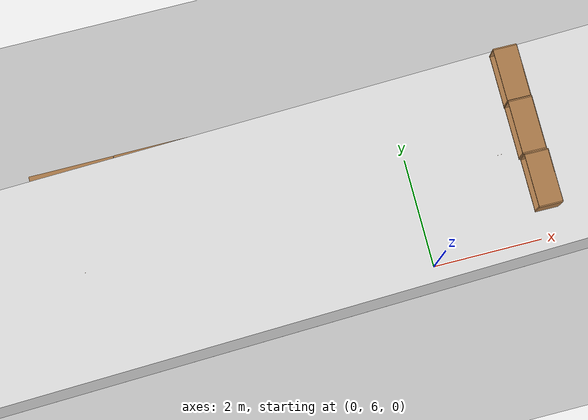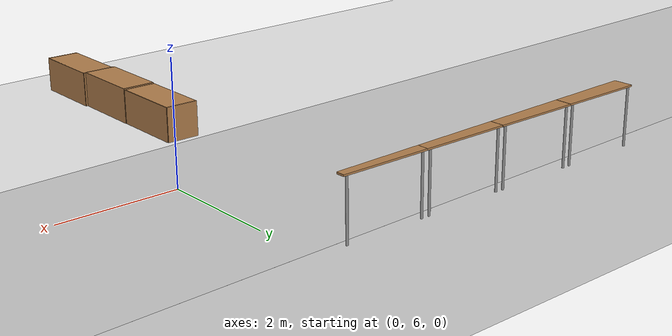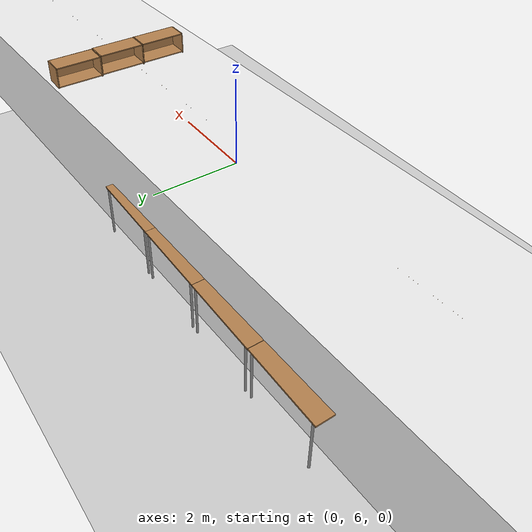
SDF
<sdf version="1.7">
 <world name="default">
  <model name="ground_plane">
   <static>1</static>
   <link name="link">
    <collision name="collision">
     <geometry><plane><normal>0 0 1</normal><size>100 100</size></plane></geometry>
     <surface><friction><ode><mu>100</mu><mu2>50</mu2></ode></friction></surface>
    </collision>
    <visual name="visual">
     <cast_shadows>0</cast_shadows>
     <geometry><plane><normal>0 0 1</normal><size>100 100</size></plane></geometry>
     <material>
      <script><uri>file://media/materials/scripts/gazebo.material</uri><name>Gazebo/Grey</name></script>
     </material>
    </visual>
   </link>
  </model>
  <model name="white_board">
   <link name="link">
    <inertial>
     <mass>1</mass>
     <inertia>
      <ixx>0.166667</ixx>
      <ixy>0</ixy>
      <ixz>0</ixz>
      <iyy>0.166667</iyy>
      <iyz>0</iyz>
      <izz>0.166667</izz>
     </inertia>
    </inertial>
    <visual name="visual">
     <geometry><box><size>3.46541 7029.7 1.9871</size></box></geometry>
     <material>
      <script><name>Gazebo/White</name><uri>file://media/materials/scripts/gazebo.material</uri></script>
      <shader type="pixel"><normal_map>__default__</normal_map></shader>
      <ambient>1 1 1 1</ambient>
      <diffuse>1 1 1 1</diffuse>
      <specular>0 0 0 1</specular>
      <emissive>0 0 0 1</emissive>
     </material>
    </visual>
    <collision name="collision">
     <geometry><box><size>3.46541 7029.7 1.9871</size></box></geometry>
     <surface>
      <friction>
       <ode><mu>1</mu><mu2>1</mu2><fdir1>0 0 0</fdir1><slip1>0</slip1><slip2>0</slip2></ode>
       <torsional>
        <coefficient>1</coefficient>
        <patch_radius>0</patch_radius>
        <surface_radius>0</surface_radius>
        <use_patch_radius>1</use_patch_radius>
        <ode><slip>0</slip></ode>
       </torsional>
      </friction>
      <bounce><restitution_coefficient>0</restitution_coefficient><threshold>1e+06</threshold></bounce>
      <contact>
       <collide_without_contact>0</collide_without_contact>
       <collide_without_contact_bitmask>1</collide_without_contact_bitmask>
       <collide_bitmask>1</collide_bitmask>
       <ode>
        <soft_cfm>0</soft_cfm>
        <soft_erp>0.2</soft_erp>
        <kp>1e+13</kp>
        <kd>1</kd>
        <max_vel>0.01</max_vel>
        <min_depth>0</min_depth>
       </ode>
       <bullet>
        <split_impulse>1</split_impulse>
        <split_impulse_penetration_threshold>-0.01</split_impulse_penetration_threshold>
        <soft_cfm>0</soft_cfm>
        <soft_erp>0.2</soft_erp>
        <kp>1e+13</kp>
        <kd>1</kd>
       </bullet>
      </contact>
     </surface>
    </collision>
   </link>
   <static>0</static>
   <pose>2.35353 7.36025 0.993605 7.2e-05 -2e-06 1.60156</pose>
  </model>
  <model name="bookshelf">
   <static>1</static>
   <link name="link">
    <inertial><mass>1</mass></inertial>
    <collision name="back">
     <pose>0 0.005 0.6 0 -0 0</pose>
     <geometry><box><size>0.9 0.01 1.2</size></box></geometry>
    </collision>
    <visual name="visual1">
     <pose>0 0.005 0.6 0 -0 0</pose>
     <geometry><box><size>0.9 0.01 1.2</size></box></geometry>
     <material>
      <script><uri>file://media/materials/scripts/gazebo.material</uri><name>Gazebo/Wood</name></script>
     </material>
    </visual>
    <collision name="left_side">
     <pose>0.45 -0.195 0.6 0 -0 0</pose>
     <geometry><box><size>0.02 0.4 1.2</size></box></geometry>
    </collision>
    <visual name="visual2">
     <pose>0.45 -0.195 0.6 0 -0 0</pose>
     <geometry><box><size>0.02 0.4 1.2</size></box></geometry>
     <material>
      <script><uri>file://media/materials/scripts/gazebo.material</uri><name>Gazebo/Wood</name></script>
     </material>
    </visual>
    <collision name="right_side">
     <pose>-0.45 -0.195 0.6 0 -0 0</pose>
     <geometry><box><size>0.02 0.4 1.2</size></box></geometry>
    </collision>
    <visual name="visual3">
     <pose>-0.45 -0.195 0.6 0 -0 0</pose>
     <geometry><box><size>0.02 0.4 1.2</size></box></geometry>
     <material>
      <script><uri>file://media/materials/scripts/gazebo.material</uri><name>Gazebo/Wood</name></script>
     </material>
    </visual>
    <collision name="bottom">
     <pose>0 -0.195 0.03 0 -0 0</pose>
     <geometry><box><size>0.88 0.4 0.06</size></box></geometry>
    </collision>
    <visual name="visual4">
     <pose>0 -0.195 0.03 0 -0 0</pose>
     <geometry><box><size>0.88 0.4 0.06</size></box></geometry>
     <material>
      <script><uri>file://media/materials/scripts/gazebo.material</uri><name>Gazebo/Wood</name></script>
     </material>
    </visual>
    <collision name="top">
     <pose>0 -0.195 1.19 0 -0 0</pose>
     <geometry><box><size>0.88 0.4 0.02</size></box></geometry>
    </collision>
    <visual name="visual5">
     <pose>0 -0.195 1.19 0 -0 0</pose>
     <geometry><box><size>0.88 0.4 0.02</size></box></geometry>
     <material>
      <script><uri>file://media/materials/scripts/gazebo.material</uri><name>Gazebo/Wood</name></script>
     </material>
    </visual>
    <collision name="low_shelf">
     <pose>0 -0.195 0.43 0 -0 0</pose>
     <geometry><box><size>0.88 0.4 0.02</size></box></geometry>
    </collision>
    <visual name="visual6">
     <pose>0 -0.195 0.43 0 -0 0</pose>
     <geometry><box><size>0.88 0.4 0.02</size></box></geometry>
     <material>
      <script><uri>file://media/materials/scripts/gazebo.material</uri><name>Gazebo/Wood</name></script>
     </material>
    </visual>
    <collision name="high_shelf">
     <pose>0 -0.195 0.8 0 -0 0</pose>
     <geometry><box><size>0.88 0.4 0.02</size></box></geometry>
    </collision>
    <visual name="visual7">
     <pose>0 -0.195 0.8 0 -0 0</pose>
     <geometry><box><size>0.88 0.4 0.02</size></box></geometry>
     <material>
      <script><uri>file://media/materials/scripts/gazebo.material</uri><name>Gazebo/Wood</name></script>
     </material>
    </visual>
   </link>
   <pose>2.02719 8.56875 0 0 0 -1.57846</pose>
  </model>
  <model name="bookshelf_clone">
   <static>1</static>
   <link name="link">
    <inertial><mass>1</mass></inertial>
    <collision name="back">
     <pose>0 0.005 0.6 0 -0 0</pose>
     <geometry><box><size>0.9 0.01 1.2</size></box></geometry>
    </collision>
    <visual name="visual1">
     <pose>0 0.005 0.6 0 -0 0</pose>
     <geometry><box><size>0.9 0.01 1.2</size></box></geometry>
     <material>
      <script><uri>file://media/materials/scripts/gazebo.material</uri><name>Gazebo/Wood</name></script>
     </material>
    </visual>
    <collision name="left_side">
     <pose>0.45 -0.195 0.6 0 -0 0</pose>
     <geometry><box><size>0.02 0.4 1.2</size></box></geometry>
    </collision>
    <visual name="visual2">
     <pose>0.45 -0.195 0.6 0 -0 0</pose>
     <geometry><box><size>0.02 0.4 1.2</size></box></geometry>
     <material>
      <script><uri>file://media/materials/scripts/gazebo.material</uri><name>Gazebo/Wood</name></script>
     </material>
    </visual>
    <collision name="right_side">
     <pose>-0.45 -0.195 0.6 0 -0 0</pose>
     <geometry><box><size>0.02 0.4 1.2</size></box></geometry>
    </collision>
    <visual name="visual3">
     <pose>-0.45 -0.195 0.6 0 -0 0</pose>
     <geometry><box><size>0.02 0.4 1.2</size></box></geometry>
     <material>
      <script><uri>file://media/materials/scripts/gazebo.material</uri><name>Gazebo/Wood</name></script>
     </material>
    </visual>
    <collision name="bottom">
     <pose>0 -0.195 0.03 0 -0 0</pose>
     <geometry><box><size>0.88 0.4 0.06</size></box></geometry>
    </collision>
    <visual name="visual4">
     <pose>0 -0.195 0.03 0 -0 0</pose>
     <geometry><box><size>0.88 0.4 0.06</size></box></geometry>
     <material>
      <script><uri>file://media/materials/scripts/gazebo.material</uri><name>Gazebo/Wood</name></script>
     </material>
    </visual>
    <collision name="top">
     <pose>0 -0.195 1.19 0 -0 0</pose>
     <geometry><box><size>0.88 0.4 0.02</size></box></geometry>
    </collision>
    <visual name="visual5">
     <pose>0 -0.195 1.19 0 -0 0</pose>
     <geometry><box><size>0.88 0.4 0.02</size></box></geometry>
     <material>
      <script><uri>file://media/materials/scripts/gazebo.material</uri><name>Gazebo/Wood</name></script>
     </material>
    </visual>
    <collision name="low_shelf">
     <pose>0 -0.195 0.43 0 -0 0</pose>
     <geometry><box><size>0.88 0.4 0.02</size></box></geometry>
    </collision>
    <visual name="visual6">
     <pose>0 -0.195 0.43 0 -0 0</pose>
     <geometry><box><size>0.88 0.4 0.02</size></box></geometry>
     <material>
      <script><uri>file://media/materials/scripts/gazebo.material</uri><name>Gazebo/Wood</name></script>
     </material>
    </visual>
    <collision name="high_shelf">
     <pose>0 -0.195 0.8 0 -0 0</pose>
     <geometry><box><size>0.88 0.4 0.02</size></box></geometry>
    </collision>
    <visual name="visual7">
     <pose>0 -0.195 0.8 0 -0 0</pose>
     <geometry><box><size>0.88 0.4 0.02</size></box></geometry>
     <material>
      <script><uri>file://media/materials/scripts/gazebo.material</uri><name>Gazebo/Wood</name></script>
     </material>
    </visual>
   </link>
   <pose>2.02018 7.63191 0 0 0 -1.57846</pose>
  </model>
  <model name="bookshelf_clone_0">
   <static>1</static>
   <link name="link">
    <inertial><mass>1</mass></inertial>
    <collision name="back">
     <pose>0 0.005 0.6 0 -0 0</pose>
     <geometry><box><size>0.9 0.01 1.2</size></box></geometry>
    </collision>
    <visual name="visual1">
     <pose>0 0.005 0.6 0 -0 0</pose>
     <geometry><box><size>0.9 0.01 1.2</size></box></geometry>
     <material>
      <script><uri>file://media/materials/scripts/gazebo.material</uri><name>Gazebo/Wood</name></script>
     </material>
    </visual>
    <collision name="left_side">
     <pose>0.45 -0.195 0.6 0 -0 0</pose>
     <geometry><box><size>0.02 0.4 1.2</size></box></geometry>
    </collision>
    <visual name="visual2">
     <pose>0.45 -0.195 0.6 0 -0 0</pose>
     <geometry><box><size>0.02 0.4 1.2</size></box></geometry>
     <material>
      <script><uri>file://media/materials/scripts/gazebo.material</uri><name>Gazebo/Wood</name></script>
     </material>
    </visual>
    <collision name="right_side">
     <pose>-0.45 -0.195 0.6 0 -0 0</pose>
     <geometry><box><size>0.02 0.4 1.2</size></box></geometry>
    </collision>
    <visual name="visual3">
     <pose>-0.45 -0.195 0.6 0 -0 0</pose>
     <geometry><box><size>0.02 0.4 1.2</size></box></geometry>
     <material>
      <script><uri>file://media/materials/scripts/gazebo.material</uri><name>Gazebo/Wood</name></script>
     </material>
    </visual>
    <collision name="bottom">
     <pose>0 -0.195 0.03 0 -0 0</pose>
     <geometry><box><size>0.88 0.4 0.06</size></box></geometry>
    </collision>
    <visual name="visual4">
     <pose>0 -0.195 0.03 0 -0 0</pose>
     <geometry><box><size>0.88 0.4 0.06</size></box></geometry>
     <material>
      <script><uri>file://media/materials/scripts/gazebo.material</uri><name>Gazebo/Wood</name></script>
     </material>
    </visual>
    <collision name="top">
     <pose>0 -0.195 1.19 0 -0 0</pose>
     <geometry><box><size>0.88 0.4 0.02</size></box></geometry>
    </collision>
    <visual name="visual5">
     <pose>0 -0.195 1.19 0 -0 0</pose>
     <geometry><box><size>0.88 0.4 0.02</size></box></geometry>
     <material>
      <script><uri>file://media/materials/scripts/gazebo.material</uri><name>Gazebo/Wood</name></script>
     </material>
    </visual>
    <collision name="low_shelf">
     <pose>0 -0.195 0.43 0 -0 0</pose>
     <geometry><box><size>0.88 0.4 0.02</size></box></geometry>
    </collision>
    <visual name="visual6">
     <pose>0 -0.195 0.43 0 -0 0</pose>
     <geometry><box><size>0.88 0.4 0.02</size></box></geometry>
     <material>
      <script><uri>file://media/materials/scripts/gazebo.material</uri><name>Gazebo/Wood</name></script>
     </material>
    </visual>
    <collision name="high_shelf">
     <pose>0 -0.195 0.8 0 -0 0</pose>
     <geometry><box><size>0.88 0.4 0.02</size></box></geometry>
    </collision>
    <visual name="visual7">
     <pose>0 -0.195 0.8 0 -0 0</pose>
     <geometry><box><size>0.88 0.4 0.02</size></box></geometry>
     <material>
      <script><uri>file://media/materials/scripts/gazebo.material</uri><name>Gazebo/Wood</name></script>
     </material>
    </visual>
   </link>
   <pose>2.01813 6.70689 0 0 0 -1.57846</pose>
  </model>
  <model name="bookshelf_clone_1">
   <static>1</static>
   <link name="link">
    <inertial><mass>1</mass></inertial>
    <collision name="back">
     <pose>0 0.005 0.6 0 -0 0</pose>
     <geometry><box><size>0.9 0.01 1.2</size></box></geometry>
    </collision>
    <visual name="visual1">
     <pose>0 0.005 0.6 0 -0 0</pose>
     <geometry><box><size>0.9 0.01 1.2</size></box></geometry>
     <material>
      <script><uri>file://media/materials/scripts/gazebo.material</uri><name>Gazebo/Wood</name></script>
     </material>
    </visual>
    <collision name="left_side">
     <pose>0.45 -0.195 0.6 0 -0 0</pose>
     <geometry><box><size>0.02 0.4 1.2</size></box></geometry>
    </collision>
    <visual name="visual2">
     <pose>0.45 -0.195 0.6 0 -0 0</pose>
     <geometry><box><size>0.02 0.4 1.2</size></box></geometry>
     <material>
      <script><uri>file://media/materials/scripts/gazebo.material</uri><name>Gazebo/Wood</name></script>
     </material>
    </visual>
    <collision name="right_side">
     <pose>-0.45 -0.195 0.6 0 -0 0</pose>
     <geometry><box><size>0.02 0.4 1.2</size></box></geometry>
    </collision>
    <visual name="visual3">
     <pose>-0.45 -0.195 0.6 0 -0 0</pose>
     <geometry><box><size>0.02 0.4 1.2</size></box></geometry>
     <material>
      <script><uri>file://media/materials/scripts/gazebo.material</uri><name>Gazebo/Wood</name></script>
     </material>
    </visual>
    <collision name="bottom">
     <pose>0 -0.195 0.03 0 -0 0</pose>
     <geometry><box><size>0.88 0.4 0.06</size></box></geometry>
    </collision>
    <visual name="visual4">
     <pose>0 -0.195 0.03 0 -0 0</pose>
     <geometry><box><size>0.88 0.4 0.06</size></box></geometry>
     <material>
      <script><uri>file://media/materials/scripts/gazebo.material</uri><name>Gazebo/Wood</name></script>
     </material>
    </visual>
    <collision name="top">
     <pose>0 -0.195 1.19 0 -0 0</pose>
     <geometry><box><size>0.88 0.4 0.02</size></box></geometry>
    </collision>
    <visual name="visual5">
     <pose>0 -0.195 1.19 0 -0 0</pose>
     <geometry><box><size>0.88 0.4 0.02</size></box></geometry>
     <material>
      <script><uri>file://media/materials/scripts/gazebo.material</uri><name>Gazebo/Wood</name></script>
     </material>
    </visual>
    <collision name="low_shelf">
     <pose>0 -0.195 0.43 0 -0 0</pose>
     <geometry><box><size>0.88 0.4 0.02</size></box></geometry>
    </collision>
    <visual name="visual6">
     <pose>0 -0.195 0.43 0 -0 0</pose>
     <geometry><box><size>0.88 0.4 0.02</size></box></geometry>
     <material>
      <script><uri>file://media/materials/scripts/gazebo.material</uri><name>Gazebo/Wood</name></script>
     </material>
    </visual>
    <collision name="high_shelf">
     <pose>0 -0.195 0.8 0 -0 0</pose>
     <geometry><box><size>0.88 0.4 0.02</size></box></geometry>
    </collision>
    <visual name="visual7">
     <pose>0 -0.195 0.8 0 -0 0</pose>
     <geometry><box><size>0.88 0.4 0.02</size></box></geometry>
     <material>
      <script><uri>file://media/materials/scripts/gazebo.material</uri><name>Gazebo/Wood</name></script>
     </material>
    </visual>
   </link>
   <pose>1.98401 8.53938 1.20832 0 0 -1.57846</pose>
  </model>
  <model name="bookshelf_clone_1_clone">
   <static>1</static>
   <link name="link">
    <inertial><mass>1</mass></inertial>
    <collision name="back">
     <pose>0 0.005 0.6 0 -0 0</pose>
     <geometry><box><size>0.9 0.01 1.2</size></box></geometry>
    </collision>
    <visual name="visual1">
     <pose>0 0.005 0.6 0 -0 0</pose>
     <geometry><box><size>0.9 0.01 1.2</size></box></geometry>
     <material>
      <script><uri>file://media/materials/scripts/gazebo.material</uri><name>Gazebo/Wood</name></script>
     </material>
    </visual>
    <collision name="left_side">
     <pose>0.45 -0.195 0.6 0 -0 0</pose>
     <geometry><box><size>0.02 0.4 1.2</size></box></geometry>
    </collision>
    <visual name="visual2">
     <pose>0.45 -0.195 0.6 0 -0 0</pose>
     <geometry><box><size>0.02 0.4 1.2</size></box></geometry>
     <material>
      <script><uri>file://media/materials/scripts/gazebo.material</uri><name>Gazebo/Wood</name></script>
     </material>
    </visual>
    <collision name="right_side">
     <pose>-0.45 -0.195 0.6 0 -0 0</pose>
     <geometry><box><size>0.02 0.4 1.2</size></box></geometry>
    </collision>
    <visual name="visual3">
     <pose>-0.45 -0.195 0.6 0 -0 0</pose>
     <geometry><box><size>0.02 0.4 1.2</size></box></geometry>
     <material>
      <script><uri>file://media/materials/scripts/gazebo.material</uri><name>Gazebo/Wood</name></script>
     </material>
    </visual>
    <collision name="bottom">
     <pose>0 -0.195 0.03 0 -0 0</pose>
     <geometry><box><size>0.88 0.4 0.06</size></box></geometry>
    </collision>
    <visual name="visual4">
     <pose>0 -0.195 0.03 0 -0 0</pose>
     <geometry><box><size>0.88 0.4 0.06</size></box></geometry>
     <material>
      <script><uri>file://media/materials/scripts/gazebo.material</uri><name>Gazebo/Wood</name></script>
     </material>
    </visual>
    <collision name="top">
     <pose>0 -0.195 1.19 0 -0 0</pose>
     <geometry><box><size>0.88 0.4 0.02</size></box></geometry>
    </collision>
    <visual name="visual5">
     <pose>0 -0.195 1.19 0 -0 0</pose>
     <geometry><box><size>0.88 0.4 0.02</size></box></geometry>
     <material>
      <script><uri>file://media/materials/scripts/gazebo.material</uri><name>Gazebo/Wood</name></script>
     </material>
    </visual>
    <collision name="low_shelf">
     <pose>0 -0.195 0.43 0 -0 0</pose>
     <geometry><box><size>0.88 0.4 0.02</size></box></geometry>
    </collision>
    <visual name="visual6">
     <pose>0 -0.195 0.43 0 -0 0</pose>
     <geometry><box><size>0.88 0.4 0.02</size></box></geometry>
     <material>
      <script><uri>file://media/materials/scripts/gazebo.material</uri><name>Gazebo/Wood</name></script>
     </material>
    </visual>
    <collision name="high_shelf">
     <pose>0 -0.195 0.8 0 -0 0</pose>
     <geometry><box><size>0.88 0.4 0.02</size></box></geometry>
    </collision>
    <visual name="visual7">
     <pose>0 -0.195 0.8 0 -0 0</pose>
     <geometry><box><size>0.88 0.4 0.02</size></box></geometry>
     <material>
      <script><uri>file://media/materials/scripts/gazebo.material</uri><name>Gazebo/Wood</name></script>
     </material>
    </visual>
   </link>
   <pose>1.98187 7.6289 1.2192 0 0 -1.57846</pose>
  </model>
  <model name="bookshelf_clone_1_clone_clone">
   <static>1</static>
   <link name="link">
    <inertial><mass>1</mass></inertial>
    <collision name="back">
     <pose>0 0.005 0.6 0 -0 0</pose>
     <geometry><box><size>0.9 0.01 1.2</size></box></geometry>
    </collision>
    <visual name="visual1">
     <pose>0 0.005 0.6 0 -0 0</pose>
     <geometry><box><size>0.9 0.01 1.2</size></box></geometry>
     <material>
      <script><uri>file://media/materials/scripts/gazebo.material</uri><name>Gazebo/Wood</name></script>
     </material>
    </visual>
    <collision name="left_side">
     <pose>0.45 -0.195 0.6 0 -0 0</pose>
     <geometry><box><size>0.02 0.4 1.2</size></box></geometry>
    </collision>
    <visual name="visual2">
     <pose>0.45 -0.195 0.6 0 -0 0</pose>
     <geometry><box><size>0.02 0.4 1.2</size></box></geometry>
     <material>
      <script><uri>file://media/materials/scripts/gazebo.material</uri><name>Gazebo/Wood</name></script>
     </material>
    </visual>
    <collision name="right_side">
     <pose>-0.45 -0.195 0.6 0 -0 0</pose>
     <geometry><box><size>0.02 0.4 1.2</size></box></geometry>
    </collision>
    <visual name="visual3">
     <pose>-0.45 -0.195 0.6 0 -0 0</pose>
     <geometry><box><size>0.02 0.4 1.2</size></box></geometry>
     <material>
      <script><uri>file://media/materials/scripts/gazebo.material</uri><name>Gazebo/Wood</name></script>
     </material>
    </visual>
    <collision name="bottom">
     <pose>0 -0.195 0.03 0 -0 0</pose>
     <geometry><box><size>0.88 0.4 0.06</size></box></geometry>
    </collision>
    <visual name="visual4">
     <pose>0 -0.195 0.03 0 -0 0</pose>
     <geometry><box><size>0.88 0.4 0.06</size></box></geometry>
     <material>
      <script><uri>file://media/materials/scripts/gazebo.material</uri><name>Gazebo/Wood</name></script>
     </material>
    </visual>
    <collision name="top">
     <pose>0 -0.195 1.19 0 -0 0</pose>
     <geometry><box><size>0.88 0.4 0.02</size></box></geometry>
    </collision>
    <visual name="visual5">
     <pose>0 -0.195 1.19 0 -0 0</pose>
     <geometry><box><size>0.88 0.4 0.02</size></box></geometry>
     <material>
      <script><uri>file://media/materials/scripts/gazebo.material</uri><name>Gazebo/Wood</name></script>
     </material>
    </visual>
    <collision name="low_shelf">
     <pose>0 -0.195 0.43 0 -0 0</pose>
     <geometry><box><size>0.88 0.4 0.02</size></box></geometry>
    </collision>
    <visual name="visual6">
     <pose>0 -0.195 0.43 0 -0 0</pose>
     <geometry><box><size>0.88 0.4 0.02</size></box></geometry>
     <material>
      <script><uri>file://media/materials/scripts/gazebo.material</uri><name>Gazebo/Wood</name></script>
     </material>
    </visual>
    <collision name="high_shelf">
     <pose>0 -0.195 0.8 0 -0 0</pose>
     <geometry><box><size>0.88 0.4 0.02</size></box></geometry>
    </collision>
    <visual name="visual7">
     <pose>0 -0.195 0.8 0 -0 0</pose>
     <geometry><box><size>0.88 0.4 0.02</size></box></geometry>
     <material>
      <script><uri>file://media/materials/scripts/gazebo.material</uri><name>Gazebo/Wood</name></script>
     </material>
    </visual>
   </link>
   <pose>1.99749 6.71175 1.21121 0 0 -1.57846</pose>
  </model>
  <model name="table">
   <static>1</static>
   <link name="link">
    <collision name="surface">
     <pose>0 0 1 0 -0 0</pose>
     <geometry><box><size>1.5 0.8 0.03</size></box></geometry>
     <surface><friction><ode><mu>0.6</mu><mu2>0.6</mu2></ode></friction></surface>
    </collision>
    <visual name="visual1">
     <pose>0 0 1 0 -0 0</pose>
     <geometry><box><size>1.5 0.8 0.03</size></box></geometry>
     <material>
      <script><uri>file://media/materials/scripts/gazebo.material</uri><name>Gazebo/Wood</name></script>
     </material>
    </visual>
    <collision name="front_left_leg">
     <pose>0.68 0.38 0.5 0 -0 0</pose>
     <geometry><cylinder><radius>0.02</radius><length>1</length></cylinder></geometry>
    </collision>
    <visual name="front_left_leg">
     <pose>0.68 0.38 0.5 0 -0 0</pose>
     <geometry><cylinder><radius>0.02</radius><length>1</length></cylinder></geometry>
     <material>
      <script><uri>file://media/materials/scripts/gazebo.material</uri><name>Gazebo/Grey</name></script>
     </material>
    </visual>
    <collision name="front_right_leg">
     <pose>0.68 -0.38 0.5 0 -0 0</pose>
     <geometry><cylinder><radius>0.02</radius><length>1</length></cylinder></geometry>
    </collision>
    <visual name="front_right_leg">
     <pose>0.68 -0.38 0.5 0 -0 0</pose>
     <geometry><cylinder><radius>0.02</radius><length>1</length></cylinder></geometry>
     <material>
      <script><uri>file://media/materials/scripts/gazebo.material</uri><name>Gazebo/Grey</name></script>
     </material>
    </visual>
    <collision name="back_right_leg">
     <pose>-0.68 -0.38 0.5 0 -0 0</pose>
     <geometry><cylinder><radius>0.02</radius><length>1</length></cylinder></geometry>
    </collision>
    <visual name="back_right_leg">
     <pose>-0.68 -0.38 0.5 0 -0 0</pose>
     <geometry><cylinder><radius>0.02</radius><length>1</length></cylinder></geometry>
     <material>
      <script><uri>file://media/materials/scripts/gazebo.material</uri><name>Gazebo/Grey</name></script>
     </material>
    </visual>
    <collision name="back_left_leg">
     <pose>-0.68 0.38 0.5 0 -0 0</pose>
     <geometry><cylinder><radius>0.02</radius><length>1</length></cylinder></geometry>
    </collision>
    <visual name="back_left_leg">
     <pose>-0.68 0.38 0.5 0 -0 0</pose>
     <geometry><cylinder><radius>0.02</radius><length>1</length></cylinder></geometry>
     <material>
      <script><uri>file://media/materials/scripts/gazebo.material</uri><name>Gazebo/Grey</name></script>
     </material>
    </visual>
   </link>
   <pose>-5.75923 8.74639 0 0 -0 0</pose>
  </model>
  <model name="table_clone">
   <static>1</static>
   <link name="link">
    <collision name="surface">
     <pose>0 0 1 0 -0 0</pose>
     <geometry><box><size>1.5 0.8 0.03</size></box></geometry>
     <surface><friction><ode><mu>0.6</mu><mu2>0.6</mu2></ode></friction></surface>
    </collision>
    <visual name="visual1">
     <pose>0 0 1 0 -0 0</pose>
     <geometry><box><size>1.5 0.8 0.03</size></box></geometry>
     <material>
      <script><uri>file://media/materials/scripts/gazebo.material</uri><name>Gazebo/Wood</name></script>
     </material>
    </visual>
    <collision name="front_left_leg">
     <pose>0.68 0.38 0.5 0 -0 0</pose>
     <geometry><cylinder><radius>0.02</radius><length>1</length></cylinder></geometry>
    </collision>
    <visual name="front_left_leg">
     <pose>0.68 0.38 0.5 0 -0 0</pose>
     <geometry><cylinder><radius>0.02</radius><length>1</length></cylinder></geometry>
     <material>
      <script><uri>file://media/materials/scripts/gazebo.material</uri><name>Gazebo/Grey</name></script>
     </material>
    </visual>
    <collision name="front_right_leg">
     <pose>0.68 -0.38 0.5 0 -0 0</pose>
     <geometry><cylinder><radius>0.02</radius><length>1</length></cylinder></geometry>
    </collision>
    <visual name="front_right_leg">
     <pose>0.68 -0.38 0.5 0 -0 0</pose>
     <geometry><cylinder><radius>0.02</radius><length>1</length></cylinder></geometry>
     <material>
      <script><uri>file://media/materials/scripts/gazebo.material</uri><name>Gazebo/Grey</name></script>
     </material>
    </visual>
    <collision name="back_right_leg">
     <pose>-0.68 -0.38 0.5 0 -0 0</pose>
     <geometry><cylinder><radius>0.02</radius><length>1</length></cylinder></geometry>
    </collision>
    <visual name="back_right_leg">
     <pose>-0.68 -0.38 0.5 0 -0 0</pose>
     <geometry><cylinder><radius>0.02</radius><length>1</length></cylinder></geometry>
     <material>
      <script><uri>file://media/materials/scripts/gazebo.material</uri><name>Gazebo/Grey</name></script>
     </material>
    </visual>
    <collision name="back_left_leg">
     <pose>-0.68 0.38 0.5 0 -0 0</pose>
     <geometry><cylinder><radius>0.02</radius><length>1</length></cylinder></geometry>
    </collision>
    <visual name="back_left_leg">
     <pose>-0.68 0.38 0.5 0 -0 0</pose>
     <geometry><cylinder><radius>0.02</radius><length>1</length></cylinder></geometry>
     <material>
      <script><uri>file://media/materials/scripts/gazebo.material</uri><name>Gazebo/Grey</name></script>
     </material>
    </visual>
   </link>
   <pose>-4.25099 8.75028 0 0 -0 0</pose>
  </model>
  <model name="table_clone_0">
   <static>1</static>
   <link name="link">
    <collision name="surface">
     <pose>0 0 1 0 -0 0</pose>
     <geometry><box><size>1.5 0.8 0.03</size></box></geometry>
     <surface><friction><ode><mu>0.6</mu><mu2>0.6</mu2></ode></friction></surface>
    </collision>
    <visual name="visual1">
     <pose>0 0 1 0 -0 0</pose>
     <geometry><box><size>1.5 0.8 0.03</size></box></geometry>
     <material>
      <script><uri>file://media/materials/scripts/gazebo.material</uri><name>Gazebo/Wood</name></script>
     </material>
    </visual>
    <collision name="front_left_leg">
     <pose>0.68 0.38 0.5 0 -0 0</pose>
     <geometry><cylinder><radius>0.02</radius><length>1</length></cylinder></geometry>
    </collision>
    <visual name="front_left_leg">
     <pose>0.68 0.38 0.5 0 -0 0</pose>
     <geometry><cylinder><radius>0.02</radius><length>1</length></cylinder></geometry>
     <material>
      <script><uri>file://media/materials/scripts/gazebo.material</uri><name>Gazebo/Grey</name></script>
     </material>
    </visual>
    <collision name="front_right_leg">
     <pose>0.68 -0.38 0.5 0 -0 0</pose>
     <geometry><cylinder><radius>0.02</radius><length>1</length></cylinder></geometry>
    </collision>
    <visual name="front_right_leg">
     <pose>0.68 -0.38 0.5 0 -0 0</pose>
     <geometry><cylinder><radius>0.02</radius><length>1</length></cylinder></geometry>
     <material>
      <script><uri>file://media/materials/scripts/gazebo.material</uri><name>Gazebo/Grey</name></script>
     </material>
    </visual>
    <collision name="back_right_leg">
     <pose>-0.68 -0.38 0.5 0 -0 0</pose>
     <geometry><cylinder><radius>0.02</radius><length>1</length></cylinder></geometry>
    </collision>
    <visual name="back_right_leg">
     <pose>-0.68 -0.38 0.5 0 -0 0</pose>
     <geometry><cylinder><radius>0.02</radius><length>1</length></cylinder></geometry>
     <material>
      <script><uri>file://media/materials/scripts/gazebo.material</uri><name>Gazebo/Grey</name></script>
     </material>
    </visual>
    <collision name="back_left_leg">
     <pose>-0.68 0.38 0.5 0 -0 0</pose>
     <geometry><cylinder><radius>0.02</radius><length>1</length></cylinder></geometry>
    </collision>
    <visual name="back_left_leg">
     <pose>-0.68 0.38 0.5 0 -0 0</pose>
     <geometry><cylinder><radius>0.02</radius><length>1</length></cylinder></geometry>
     <material>
      <script><uri>file://media/materials/scripts/gazebo.material</uri><name>Gazebo/Grey</name></script>
     </material>
    </visual>
   </link>
   <pose>-2.74643 8.74798 0 0 -0 0</pose>
  </model>
  <model name="table_clone_1">
   <static>1</static>
   <link name="link">
    <collision name="surface">
     <pose>0 0 1 0 -0 0</pose>
     <geometry><box><size>1.5 0.8 0.03</size></box></geometry>
     <surface><friction><ode><mu>0.6</mu><mu2>0.6</mu2></ode></friction></surface>
    </collision>
    <visual name="visual1">
     <pose>0 0 1 0 -0 0</pose>
     <geometry><box><size>1.5 0.8 0.03</size></box></geometry>
     <material>
      <script><uri>file://media/materials/scripts/gazebo.material</uri><name>Gazebo/Wood</name></script>
     </material>
    </visual>
    <collision name="front_left_leg">
     <pose>0.68 0.38 0.5 0 -0 0</pose>
     <geometry><cylinder><radius>0.02</radius><length>1</length></cylinder></geometry>
    </collision>
    <visual name="front_left_leg">
     <pose>0.68 0.38 0.5 0 -0 0</pose>
     <geometry><cylinder><radius>0.02</radius><length>1</length></cylinder></geometry>
     <material>
      <script><uri>file://media/materials/scripts/gazebo.material</uri><name>Gazebo/Grey</name></script>
     </material>
    </visual>
    <collision name="front_right_leg">
     <pose>0.68 -0.38 0.5 0 -0 0</pose>
     <geometry><cylinder><radius>0.02</radius><length>1</length></cylinder></geometry>
    </collision>
    <visual name="front_right_leg">
     <pose>0.68 -0.38 0.5 0 -0 0</pose>
     <geometry><cylinder><radius>0.02</radius><length>1</length></cylinder></geometry>
     <material>
      <script><uri>file://media/materials/scripts/gazebo.material</uri><name>Gazebo/Grey</name></script>
     </material>
    </visual>
    <collision name="back_right_leg">
     <pose>-0.68 -0.38 0.5 0 -0 0</pose>
     <geometry><cylinder><radius>0.02</radius><length>1</length></cylinder></geometry>
    </collision>
    <visual name="back_right_leg">
     <pose>-0.68 -0.38 0.5 0 -0 0</pose>
     <geometry><cylinder><radius>0.02</radius><length>1</length></cylinder></geometry>
     <material>
      <script><uri>file://media/materials/scripts/gazebo.material</uri><name>Gazebo/Grey</name></script>
     </material>
    </visual>
    <collision name="back_left_leg">
     <pose>-0.68 0.38 0.5 0 -0 0</pose>
     <geometry><cylinder><radius>0.02</radius><length>1</length></cylinder></geometry>
    </collision>
    <visual name="back_left_leg">
     <pose>-0.68 0.38 0.5 0 -0 0</pose>
     <geometry><cylinder><radius>0.02</radius><length>1</length></cylinder></geometry>
     <material>
      <script><uri>file://media/materials/scripts/gazebo.material</uri><name>Gazebo/Grey</name></script>
     </material>
    </visual>
   </link>
   <pose>-1.24535 8.7473 0 0 -0 0</pose>
  </model>
  <model name="table_clone_2">
   <static>1</static>
   <link name="link">
    <collision name="surface">
     <pose>0 0 1 0 -0 0</pose>
     <geometry><box><size>1.5 0.8 0.03</size></box></geometry>
     <surface><friction><ode><mu>0.6</mu><mu2>0.6</mu2></ode></friction></surface>
    </collision>
    <visual name="visual1">
     <pose>0 0 1 0 -0 0</pose>
     <geometry><box><size>1.5 0.8 0.03</size></box></geometry>
     <material>
      <script><uri>file://media/materials/scripts/gazebo.material</uri><name>Gazebo/Wood</name></script>
     </material>
    </visual>
    <collision name="front_left_leg">
     <pose>0.68 0.38 0.5 0 -0 0</pose>
     <geometry><cylinder><radius>0.02</radius><length>1</length></cylinder></geometry>
    </collision>
    <visual name="front_left_leg">
     <pose>0.68 0.38 0.5 0 -0 0</pose>
     <geometry><cylinder><radius>0.02</radius><length>1</length></cylinder></geometry>
     <material>
      <script><uri>file://media/materials/scripts/gazebo.material</uri><name>Gazebo/Grey</name></script>
     </material>
    </visual>
    <collision name="front_right_leg">
     <pose>0.68 -0.38 0.5 0 -0 0</pose>
     <geometry><cylinder><radius>0.02</radius><length>1</length></cylinder></geometry>
    </collision>
    <visual name="front_right_leg">
     <pose>0.68 -0.38 0.5 0 -0 0</pose>
     <geometry><cylinder><radius>0.02</radius><length>1</length></cylinder></geometry>
     <material>
      <script><uri>file://media/materials/scripts/gazebo.material</uri><name>Gazebo/Grey</name></script>
     </material>
    </visual>
    <collision name="back_right_leg">
     <pose>-0.68 -0.38 0.5 0 -0 0</pose>
     <geometry><cylinder><radius>0.02</radius><length>1</length></cylinder></geometry>
    </collision>
    <visual name="back_right_leg">
     <pose>-0.68 -0.38 0.5 0 -0 0</pose>
     <geometry><cylinder><radius>0.02</radius><length>1</length></cylinder></geometry>
     <material>
      <script><uri>file://media/materials/scripts/gazebo.material</uri><name>Gazebo/Grey</name></script>
     </material>
    </visual>
    <collision name="back_left_leg">
     <pose>-0.68 0.38 0.5 0 -0 0</pose>
     <geometry><cylinder><radius>0.02</radius><length>1</length></cylinder></geometry>
    </collision>
    <visual name="back_left_leg">
     <pose>-0.68 0.38 0.5 0 -0 0</pose>
     <geometry><cylinder><radius>0.02</radius><length>1</length></cylinder></geometry>
     <material>
      <script><uri>file://media/materials/scripts/gazebo.material</uri><name>Gazebo/Grey</name></script>
     </material>
    </visual>
   </link>
   <pose>-5.73044 6.10983 0 0 -0 0</pose>
  </model>
  <model name="table_clone_3">
   <static>1</static>
   <link name="link">
    <collision name="surface">
     <pose>0 0 1 0 -0 0</pose>
     <geometry><box><size>1.5 0.8 0.03</size></box></geometry>
     <surface><friction><ode><mu>0.6</mu><mu2>0.6</mu2></ode></friction></surface>
    </collision>
    <visual name="visual1">
     <pose>0 0 1 0 -0 0</pose>
     <geometry><box><size>1.5 0.8 0.03</size></box></geometry>
     <material>
      <script><uri>file://media/materials/scripts/gazebo.material</uri><name>Gazebo/Wood</name></script>
     </material>
    </visual>
    <collision name="front_left_leg">
     <pose>0.68 0.38 0.5 0 -0 0</pose>
     <geometry><cylinder><radius>0.02</radius><length>1</length></cylinder></geometry>
    </collision>
    <visual name="front_left_leg">
     <pose>0.68 0.38 0.5 0 -0 0</pose>
     <geometry><cylinder><radius>0.02</radius><length>1</length></cylinder></geometry>
     <material>
      <script><uri>file://media/materials/scripts/gazebo.material</uri><name>Gazebo/Grey</name></script>
     </material>
    </visual>
    <collision name="front_right_leg">
     <pose>0.68 -0.38 0.5 0 -0 0</pose>
     <geometry><cylinder><radius>0.02</radius><length>1</length></cylinder></geometry>
    </collision>
    <visual name="front_right_leg">
     <pose>0.68 -0.38 0.5 0 -0 0</pose>
     <geometry><cylinder><radius>0.02</radius><length>1</length></cylinder></geometry>
     <material>
      <script><uri>file://media/materials/scripts/gazebo.material</uri><name>Gazebo/Grey</name></script>
     </material>
    </visual>
    <collision name="back_right_leg">
     <pose>-0.68 -0.38 0.5 0 -0 0</pose>
     <geometry><cylinder><radius>0.02</radius><length>1</length></cylinder></geometry>
    </collision>
    <visual name="back_right_leg">
     <pose>-0.68 -0.38 0.5 0 -0 0</pose>
     <geometry><cylinder><radius>0.02</radius><length>1</length></cylinder></geometry>
     <material>
      <script><uri>file://media/materials/scripts/gazebo.material</uri><name>Gazebo/Grey</name></script>
     </material>
    </visual>
    <collision name="back_left_leg">
     <pose>-0.68 0.38 0.5 0 -0 0</pose>
     <geometry><cylinder><radius>0.02</radius><length>1</length></cylinder></geometry>
    </collision>
    <visual name="back_left_leg">
     <pose>-0.68 0.38 0.5 0 -0 0</pose>
     <geometry><cylinder><radius>0.02</radius><length>1</length></cylinder></geometry>
     <material>
      <script><uri>file://media/materials/scripts/gazebo.material</uri><name>Gazebo/Grey</name></script>
     </material>
    </visual>
   </link>
   <pose>-6.05498 7.369 0 0 -0 1.5559</pose>
  </model>
 </world>
</sdf>
